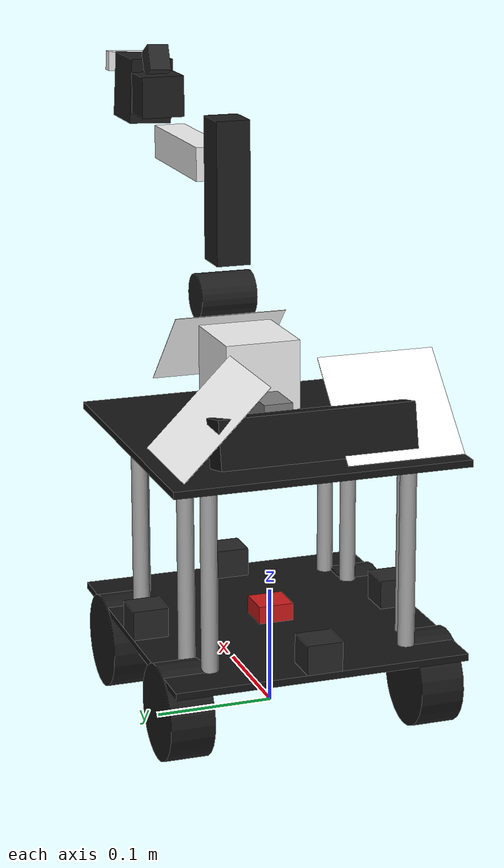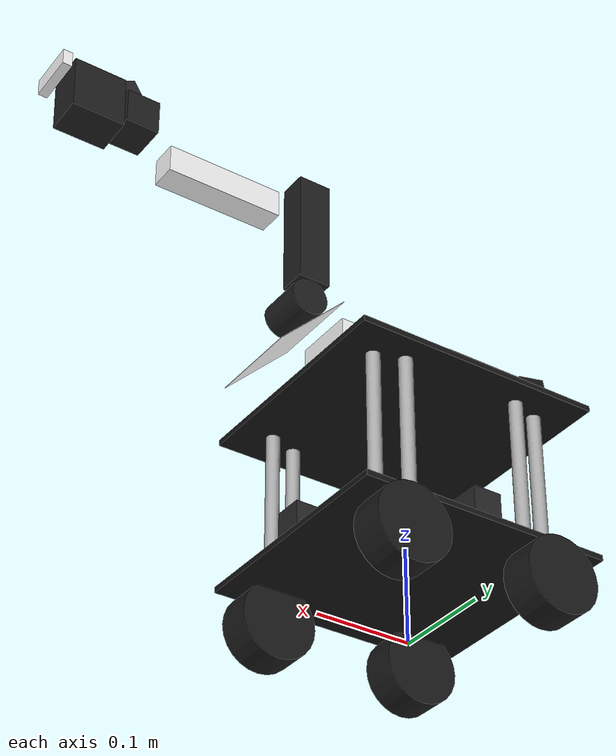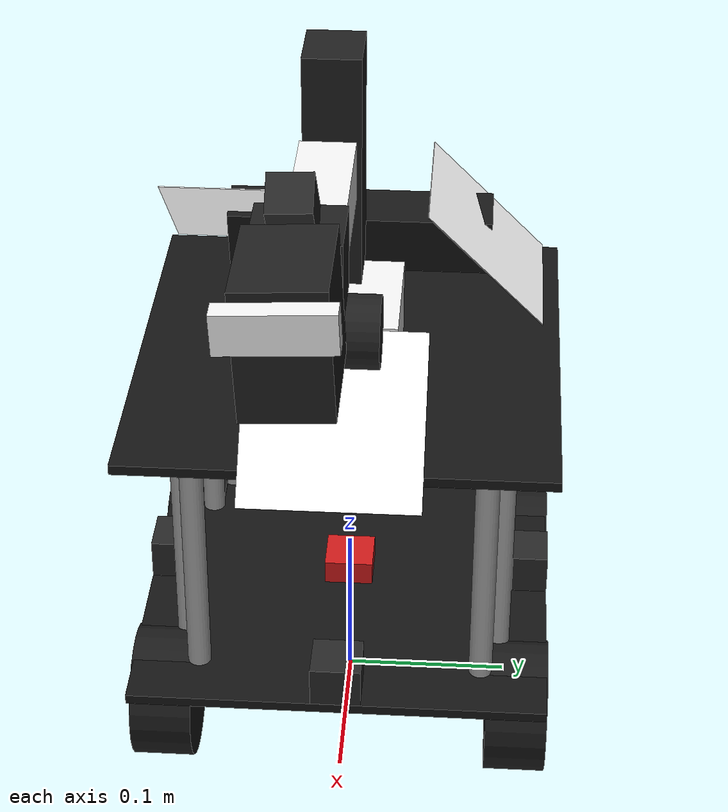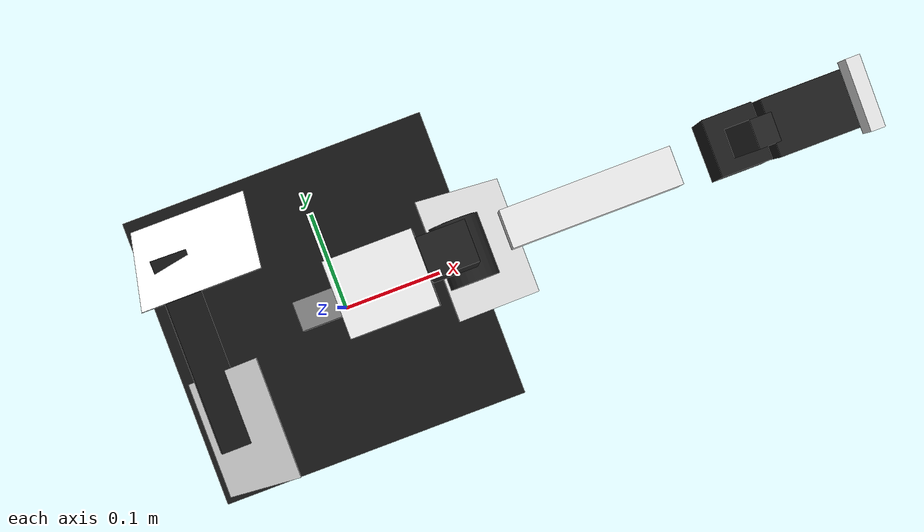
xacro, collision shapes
<?xml version="1.0"?>
<robot xmlns:xacro="http://www.ros.org/wiki/xacro" xmlns:gz="http://gazebosim.org/schema" name="mecanum_bot">

    <xacro:property name="PI" value="3.1415926535897931"/>

    <xacro:arg name="drive" default="mecanum"/>
    <xacro:arg name="lidar" default="false"/>
    <xacro:arg name="minimal_sensors" default="false"/>
    <!-- sim.launch.py vr:=true. Quest streams are 960x540 at 30 Hz. -->
    <xacro:arg name="vr_cameras" default="false"/>
    <!-- use_sim loads gz_ros2_control. use_mock is the CI GenericSystem.
         controllers_file is controllers.yaml for the gz plugin only. -->
    <xacro:arg name="use_sim" default="false"/>
    <xacro:arg name="use_mock" default="false"/>
    <xacro:arg name="controllers_file" default=""/>
    <xacro:arg name="calibration_file" default=""/>
    <xacro:arg name="base_port" default="/dev/ttyUSB0"/>
    <xacro:arg name="base_baud" default="115200"/>
    <xacro:arg name="arm_port" default="/dev/ttyACM0"/>
    <xacro:arg name="arm_baud" default="1000000"/>
    <xacro:property name="enable_extra_cameras" value="true"/>
    <xacro:property name="front_cam_width" value="640"/>
    <xacro:property name="front_cam_height" value="480"/>
    <xacro:property name="front_cam_rate" value="30"/>
    <xacro:property name="vr_cam_width" value="960"/>
    <xacro:property name="vr_cam_height" value="540"/>
    <xacro:property name="vr_cam_rate" value="30"/>
    <xacro:if value="$(arg minimal_sensors)">
        <xacro:property name="enable_extra_cameras" value="false"/>
        <xacro:property name="front_cam_width" value="160"/>
        <xacro:property name="front_cam_height" value="120"/>
        <xacro:property name="front_cam_rate" value="5"/>
    </xacro:if>
    <!-- Later than minimal_sensors, so vr:=true raises the front camera
         without turning the depth camera or the four fisheyes back on. -->
    <xacro:if value="$(arg vr_cameras)">
        <xacro:property name="front_cam_width" value="${vr_cam_width}"/>
        <xacro:property name="front_cam_height" value="${vr_cam_height}"/>
        <xacro:property name="front_cam_rate" value="${vr_cam_rate}"/>
    </xacro:if>

    <xacro:property name="chassis_length"    value="0.265"/>  <!-- 265 mm front-to-rear -->
    <xacro:property name="chassis_width"     value="0.250"/>  <!-- 250 mm left-to-right -->
    <xacro:property name="plate_thickness"   value="0.006"/>  <!-- 6 mm aluminium plate -->
    <xacro:property name="standoff_height"   value="0.160"/>  <!-- 160 mm between plate faces -->
    <xacro:property name="ground_clearance"  value="0.070"/>  <!-- ground → bottom of bottom plate -->

    <!-- Bottom plate (base_link) centre above base_footprint -->
    <xacro:property name="base_link_z_offset" value="${ground_clearance + plate_thickness / 2.0}"/>
    <!-- Top plate centre above base_link centre -->
    <xacro:property name="top_plate_dz"       value="${plate_thickness + standoff_height}"/>
    <!-- Top surface of top plate above base_link centre (used for mounting) -->
    <xacro:property name="top_surface_dz"     value="${top_plate_dz + plate_thickness / 2.0}"/>

    <!-- ================================================================
         Wheels
         ================================================================ -->
    <xacro:property name="wheel_radius"       value="0.04"/>
    <xacro:property name="wheel_width"        value="0.037"/>
    <xacro:property name="wheel_separation_x" value="0.165"/>
    <xacro:property name="wheel_separation_y" value="0.215"/>
    <!-- Negative: wheels hang below bottom plate -->
    <xacro:property name="wheel_z_offset"     value="${wheel_radius - base_link_z_offset}"/>
    <xacro:property name="wheel_x_offset"     value="${wheel_separation_x / 2.0}"/>
    <xacro:property name="wheel_y_offset"     value="${wheel_separation_y / 2.0}"/>
    <!-- Hub and roller sizes baked into meshes/base/mecanum_wheel_cs_*.stl
         by scripts/generate_base_meshes.py. Collision still uses wheel_radius
         and wheel_width. -->
    <xacro:property name="hub_radius_scale"   value="0.80"/>
    <xacro:property name="roller_radius"      value="0.006"/>
    <xacro:property name="roller_length"      value="0.030"/>
    <xacro:property name="wheel_effort"       value="100"/>
    <xacro:property name="wheel_velocity"     value="100"/>

    <xacro:property name="base_mass"       value="1.5"/>
    <xacro:property name="top_plate_mass"  value="1.0"/>
    <xacro:property name="wheel_mass"      value="0.2"/>
    <xacro:property name="camera_mass"     value="0.05"/>
    <xacro:property name="astra_mass"      value="0.300"/>

    <!-- ================================================================
         OV9732 camera body size (camera + case)
         ================================================================ -->
    <xacro:property name="camera_size_x"   value="0.030"/>  <!-- depth into face -->
    <xacro:property name="camera_size_y"   value="0.030"/>  <!-- width -->
    <xacro:property name="camera_size_z"   value="0.025"/>  <!-- height -->

    <!-- ================================================================
         base_footprint — ground-level reference frame
         ================================================================ -->
    <link name="base_footprint"/>

    <link name="base_link">
        <!-- Simplified procedural plate, not CAD. meshes/base/README.md. -->
        <visual>
            <origin xyz="0 0 0" rpy="0 0 0"/>
            <geometry>
                <mesh filename="package://omnibot_description/meshes/base/chassis_plate.stl"/>
            </geometry>
            <material name="chassis_black">
                <color rgba="0.08 0.08 0.08 1"/>
            </material>
        </visual>
        <collision>
            <origin xyz="0 0 0" rpy="0 0 0"/>
            <geometry>
                <box size="${chassis_length} ${chassis_width} ${plate_thickness}"/>
            </geometry>
        </collision>
        <inertial>
            <mass value="${base_mass}"/>
            <origin xyz="0 0 0" rpy="0 0 0"/>
            <inertia
                ixx="${base_mass / 12.0 * (chassis_width*chassis_width   + plate_thickness*plate_thickness)}"
                ixy="0" ixz="0"
                iyy="${base_mass / 12.0 * (chassis_length*chassis_length + plate_thickness*plate_thickness)}"
                iyz="0"
                izz="${base_mass / 12.0 * (chassis_length*chassis_length + chassis_width*chassis_width)}"/>
        </inertial>
    </link>

    <gazebo reference="base_link">
        <material>Gazebo/DarkGrey</material>
    </gazebo>

    <joint name="base_footprint_joint" type="fixed">
        <parent link="base_footprint"/>
        <child link="base_link"/>
        <origin xyz="0 0 ${base_link_z_offset}" rpy="0 0 0"/>
    </joint>

    <xacro:macro name="standoff" params="prefix x_pos y_pos">
        <link name="${prefix}_standoff_link">
            <visual>
                <origin xyz="0 0 0" rpy="0 0 0"/>
                <geometry>
                    <cylinder radius="0.007" length="${standoff_height}"/>
                </geometry>
                <material name="standoff_silver">
                    <color rgba="0.65 0.65 0.65 1"/>
                </material>
            </visual>
            <collision>
                <origin xyz="0 0 0" rpy="0 0 0"/>
                <geometry>
                    <cylinder radius="0.007" length="${standoff_height}"/>
                </geometry>
            </collision>
            <!-- 0.04 kg and 0.0001 kg·m^2 are round estimates, not a datasheet. -->
            <inertial>
                <mass value="0.04"/>
                <origin xyz="0 0 0" rpy="0 0 0"/>
                <inertia ixx="0.0001" ixy="0" ixz="0" iyy="0.0001" iyz="0" izz="0.0001"/>
            </inertial>
        </link>
        <joint name="${prefix}_standoff_joint" type="fixed">
            <parent link="base_link"/>
            <child link="${prefix}_standoff_link"/>
            <!-- standoff spans from top face of bottom plate to bottom face of top plate -->
            <origin xyz="${x_pos} ${y_pos} ${plate_thickness / 2.0 + standoff_height / 2.0}" rpy="0 0 0"/>
        </joint>
    </xacro:macro>

    <!-- 8 standoffs: two pairs near each corner -->
    <xacro:standoff prefix="so_fl_a" x_pos=" 0.095" y_pos=" 0.085"/>
    <xacro:standoff prefix="so_fl_b" x_pos=" 0.065" y_pos=" 0.095"/>
    <xacro:standoff prefix="so_fr_a" x_pos=" 0.095" y_pos="-0.085"/>
    <xacro:standoff prefix="so_fr_b" x_pos=" 0.065" y_pos="-0.095"/>
    <xacro:standoff prefix="so_rl_a" x_pos="-0.095" y_pos=" 0.085"/>
    <xacro:standoff prefix="so_rl_b" x_pos="-0.065" y_pos=" 0.095"/>
    <xacro:standoff prefix="so_rr_a" x_pos="-0.095" y_pos="-0.085"/>
    <xacro:standoff prefix="so_rr_b" x_pos="-0.065" y_pos="-0.095"/>

    <link name="top_plate_link">
        <!-- Same simplified plate mesh as base_link. Not CAD. -->
        <visual>
            <origin xyz="0 0 0" rpy="0 0 0"/>
            <geometry>
                <mesh filename="package://omnibot_description/meshes/base/chassis_plate.stl"/>
            </geometry>
            <material name="chassis_black"/>
        </visual>
        <collision>
            <origin xyz="0 0 0" rpy="0 0 0"/>
            <geometry>
                <box size="${chassis_length} ${chassis_width} ${plate_thickness}"/>
            </geometry>
        </collision>
        <inertial>
            <mass value="${top_plate_mass}"/>
            <origin xyz="0 0 0" rpy="0 0 0"/>
            <inertia
                ixx="${top_plate_mass / 12.0 * (chassis_width*chassis_width   + plate_thickness*plate_thickness)}"
                ixy="0" ixz="0"
                iyy="${top_plate_mass / 12.0 * (chassis_length*chassis_length + plate_thickness*plate_thickness)}"
                iyz="0"
                izz="${top_plate_mass / 12.0 * (chassis_length*chassis_length + chassis_width*chassis_width)}"/>
        </inertial>
    </link>

    <gazebo reference="top_plate_link">
        <material>Gazebo/DarkGrey</material>
    </gazebo>

    <joint name="top_plate_joint" type="fixed">
        <parent link="base_link"/>
        <child link="top_plate_link"/>
        <!-- top plate centre is one plate_thickness + standoff_height above bottom plate centre -->
        <origin xyz="0 0 ${top_plate_dz}" rpy="0 0 0"/>
    </joint>

    <xacro:macro name="base_camera" params="prefix x_pos y_pos yaw_angle with_sensor:=true cam_width:=640 cam_height:=480 cam_rate:=30">
        <link name="${prefix}_camera_link">
            <visual>
                <origin xyz="0 0 0" rpy="0 0 0"/>
                <geometry>
                    <box size="${camera_size_x} ${camera_size_y} ${camera_size_z}"/>
                </geometry>
                <material name="dark_grey">
                    <color rgba="0.15 0.15 0.15 1"/>
                </material>
            </visual>
            <collision>
                <origin xyz="0 0 0" rpy="0 0 0"/>
                <geometry>
                    <box size="${camera_size_x} ${camera_size_y} ${camera_size_z}"/>
                </geometry>
            </collision>
            <inertial>
                <mass value="${camera_mass}"/>
                <origin xyz="0 0 0" rpy="0 0 0"/>
                <inertia
                    ixx="${camera_mass / 12.0 * (camera_size_y*camera_size_y + camera_size_z*camera_size_z)}"
                    ixy="0" ixz="0"
                    iyy="${camera_mass / 12.0 * (camera_size_x*camera_size_x + camera_size_z*camera_size_z)}"
                    iyz="0"
                    izz="${camera_mass / 12.0 * (camera_size_x*camera_size_x + camera_size_y*camera_size_y)}"/>
            </inertial>
        </link>

        <!-- Cameras sit on top surface of base_link, near each edge, facing outward. -->
        <joint name="${prefix}_camera_joint" type="fixed">
            <parent link="base_link"/>
            <child link="${prefix}_camera_link"/>
            <origin xyz="${x_pos} ${y_pos} ${plate_thickness / 2.0 + camera_size_z / 2.0}"
                    rpy="0 0 ${yaw_angle}"/>
        </joint>

        <xacro:if value="${with_sensor}">
        <gazebo reference="${prefix}_camera_link">
            <sensor name="${prefix}_camera_sensor" type="camera">
                <always_on>1</always_on>
                <update_rate>${cam_rate}</update_rate>
                <visualize>false</visualize>
                <topic>/camera/${prefix}/image_raw</topic>
                <gz_frame_id>${prefix}_camera_link</gz_frame_id>
                <camera>
                    <horizontal_fov>1.745</horizontal_fov>
                    <image>
                        <width>${cam_width}</width>
                        <height>${cam_height}</height>
                        <format>R8G8B8</format>
                    </image>
                    <clip>
                        <near>0.05</near>
                        <far>10</far>
                    </clip>
                </camera>
            </sensor>
        </gazebo>
        </xacro:if>
    </xacro:macro>

    <!-- Cameras on top of the base plate, near each edge, facing outward -->
    <xacro:base_camera prefix="front"
        x_pos="${chassis_length / 2.0 - camera_size_x / 2.0}"
        y_pos="0"
        yaw_angle="0"
        with_sensor="true"
        cam_width="${front_cam_width}"
        cam_height="${front_cam_height}"
        cam_rate="${front_cam_rate}"/>

    <xacro:base_camera prefix="rear"
        x_pos="${-(chassis_length / 2.0 - camera_size_x / 2.0)}"
        y_pos="0"
        yaw_angle="${PI}"
        with_sensor="${enable_extra_cameras}"/>

    <xacro:base_camera prefix="left"
        x_pos="0"
        y_pos="${chassis_width / 2.0 - camera_size_x / 2.0}"
        yaw_angle="${PI/2}"
        with_sensor="${enable_extra_cameras}"/>

    <xacro:base_camera prefix="right"
        x_pos="0"
        y_pos="${-(chassis_width / 2.0 - camera_size_x / 2.0)}"
        yaw_angle="${-PI/2}"
        with_sensor="${enable_extra_cameras}"/>

    <link name="depth_camera_link">
        <visual>
            <origin xyz="0 0 0" rpy="0 0 0"/>
            <geometry>
                <!-- 165 mm wide, 30 mm deep, 40 mm tall -->
                <box size="0.030 0.165 0.040"/>
            </geometry>
            <material name="astra_black">
                <color rgba="0.08 0.08 0.08 1"/>
            </material>
        </visual>
        <collision>
            <origin xyz="0 0 0" rpy="0 0 0"/>
            <geometry>
                <box size="0.030 0.165 0.040"/>
            </geometry>
        </collision>
        <inertial>
            <mass value="${astra_mass}"/>
            <origin xyz="0 0 0" rpy="0 0 0"/>
            <inertia
                ixx="${astra_mass / 12.0 * (0.165*0.165 + 0.040*0.040)}"
                ixy="0" ixz="0"
                iyy="${astra_mass / 12.0 * (0.030*0.030 + 0.040*0.040)}"
                iyz="0"
                izz="${astra_mass / 12.0 * (0.030*0.030 + 0.165*0.165)}"/>
        </inertial>
    </link>

    <!-- Rear-centre of top plate, 20 mm above surface, 12° down-tilt, facing rearward (yaw=PI) -->
    <joint name="depth_camera_joint" type="fixed">
        <parent link="top_plate_link"/>
        <child link="depth_camera_link"/>
        <origin xyz="${-(chassis_length / 2.0 - 0.030)} 0 ${plate_thickness / 2.0 + 0.025}"
                rpy="0 -0.2094 ${PI}"/>
    </joint>

    <!-- Optical frame: Z forward, X right, Y down (ROS convention) -->
    <link name="depth_camera_optical_frame"/>
    <joint name="depth_camera_optical_joint" type="fixed">
        <parent link="depth_camera_link"/>
        <child link="depth_camera_optical_frame"/>
        <origin xyz="0 0 0" rpy="${-PI/2} 0 ${-PI/2}"/>
    </joint>

    <xacro:if value="${enable_extra_cameras}">
    <gazebo reference="depth_camera_link">
        <sensor name="astra_pro_sensor" type="rgbd_camera">
            <always_on>1</always_on>
            <update_rate>30</update_rate>
            <visualize>false</visualize>
            <topic>/camera/depth</topic>
            <gz_frame_id>depth_camera_optical_frame</gz_frame_id>
            <camera>
                <horizontal_fov>1.0472</horizontal_fov>
                <image>
                    <width>640</width>
                    <height>480</height>
                    <format>R_FLOAT32</format>
                </image>
                <clip>
                    <near>0.6</near>
                    <far>8.0</far>
                </clip>
                <noise>
                    <type>gaussian</type>
                    <mean>0.0</mean>
                    <stddev>0.005</stddev>
                </noise>
            </camera>
        </sensor>
    </gazebo>
    </xacro:if>

    <link name="camera_link">
        <visual>
            <origin xyz="0 0 0" rpy="0 0 0"/>
            <geometry>
                <box size="0.040 0.025 0.025"/>
            </geometry>
            <material name="grey">
                <color rgba="0.5 0.5 0.5 1"/>
            </material>
        </visual>
        <collision>
            <origin xyz="0 0 0" rpy="0 0 0"/>
            <geometry><box size="0.040 0.025 0.025"/></geometry>
        </collision>
        <inertial>
            <mass value="${camera_mass}"/>
            <origin xyz="0 0 0" rpy="0 0 0"/>
            <inertia ixx="1e-5" ixy="0" ixz="0" iyy="1e-5" iyz="0" izz="1e-5"/>
        </inertial>
    </link>

    <joint name="camera_joint" type="fixed">
        <parent link="top_plate_link"/>
        <child link="camera_link"/>
        <origin xyz="0 0 ${plate_thickness / 2.0 + 0.015}" rpy="0 0 0"/>
    </joint>

    <xacro:if value="${enable_extra_cameras}">
    <gazebo reference="camera_link">
        <sensor name="camera_sensor" type="camera">
            <always_on>1</always_on>
            <update_rate>30</update_rate>
            <visualize>false</visualize>
            <topic>/camera/image_raw</topic>
            <gz_frame_id>camera_link</gz_frame_id>
            <camera>
                <horizontal_fov>1.047</horizontal_fov>
                <image>
                    <width>640</width>
                    <height>480</height>
                    <format>R8G8B8</format>
                </image>
                <clip>
                    <near>0.05</near>
                    <far>50</far>
                </clip>
            </camera>
        </sensor>
    </gazebo>
    </xacro:if>

    <link name="imu_link">
        <visual>
            <origin xyz="0 0 0" rpy="0 0 0"/>
            <geometry><box size="0.03 0.03 0.015"/></geometry>
            <material name="red"><color rgba="0.8 0.1 0.1 1"/></material>
        </visual>
        <collision>
            <origin xyz="0 0 0" rpy="0 0 0"/>
            <geometry><box size="0.03 0.03 0.015"/></geometry>
        </collision>
        <inertial>
            <mass value="0.01"/>
            <origin xyz="0 0 0" rpy="0 0 0"/>
            <inertia ixx="1e-6" ixy="0" ixz="0" iyy="1e-6" iyz="0" izz="1e-6"/>
        </inertial>
    </link>

    <joint name="imu_joint" type="fixed">
        <parent link="base_link"/>
        <child link="imu_link"/>
        <!-- Centred on bottom plate, slightly above surface -->
        <origin xyz="0 0 ${plate_thickness / 2.0 + 0.008}" rpy="0 0 0"/>
    </joint>

    <xacro:macro name="wheel" params="prefix x_reflect y_reflect mesh">
        <link name="${prefix}_wheel_link">

            <visual>
                <origin xyz="0 0 0" rpy="0 0 0"/>
                <geometry>
                    <mesh filename="package://omnibot_description/meshes/base/${mesh}"/>
                </geometry>
                <material name="wheel_black">
                    <color rgba="0.10 0.10 0.10 1"/>
                </material>
            </visual>

            <!-- Collision: simple cylinder for physics (covers full wheel radius) -->
            <collision>
                <origin xyz="0 0 0" rpy="${PI/2} 0 0"/>
                <geometry>
                    <cylinder radius="${wheel_radius}" length="${wheel_width}"/>
                </geometry>
            </collision>

            <inertial>
                <mass value="${wheel_mass}"/>
                <origin xyz="0 0 0" rpy="0 0 0"/>
                <inertia
                    ixx="${wheel_mass/12.0*(3*wheel_radius*wheel_radius + wheel_width*wheel_width)}"
                    ixy="0" ixz="0"
                    iyy="${wheel_mass/2.0*(wheel_radius*wheel_radius)}"
                    iyz="0"
                    izz="${wheel_mass/12.0*(3*wheel_radius*wheel_radius + wheel_width*wheel_width)}"/>
            </inertial>
        </link>

        <gazebo reference="${prefix}_wheel_link">
            <material>Gazebo/DarkGrey</material>
            <mu1>0.8</mu1>
            <mu2>0.8</mu2>
        </gazebo>

        <!-- No yaw in joint — wheels always face straight forward/rear.
             The diagonal roller force is handled by the MecanumDrive plugin. -->
        <joint name="${prefix}_wheel_joint" type="continuous">
            <parent link="base_link"/>
            <child link="${prefix}_wheel_link"/>
            <origin xyz="${x_reflect * wheel_x_offset} ${y_reflect * wheel_y_offset} ${wheel_z_offset}"
                    rpy="0 0 0"/>
            <axis xyz="0 1 0"/>
            <limit effort="${wheel_effort}" velocity="${wheel_velocity}"/>
        </joint>
    </xacro:macro>

    <!-- FL+RR share "\" (cs_pos). FR+RL share "/" (cs_neg). -->
    <xacro:wheel prefix="front_left"  x_reflect=" 1" y_reflect=" 1" mesh="mecanum_wheel_cs_pos.stl"/>
    <xacro:wheel prefix="front_right" x_reflect=" 1" y_reflect="-1" mesh="mecanum_wheel_cs_neg.stl"/>
    <xacro:wheel prefix="rear_left"   x_reflect="-1" y_reflect=" 1" mesh="mecanum_wheel_cs_neg.stl"/>
    <xacro:wheel prefix="rear_right"  x_reflect="-1" y_reflect="-1" mesh="mecanum_wheel_cs_pos.stl"/>

    <material name="arm_white"><color rgba="0.95 0.95 0.95 1.0"/></material>
    <material name="arm_servo"><color rgba="0.12 0.12 0.12 1.0"/></material>

    <xacro:property name="sts3215_effort" value="1.9123"/>
    <xacro:property name="sts3215_velocity" value="5.4542"/>
    <xacro:arg name="gz_arm_effort" default="${sts3215_effort}"/>

    <xacro:property name="arm_body_x" value="0.075"/>
    <xacro:property name="arm_body_y" value="0.065"/>
    <xacro:property name="arm_body_z" value="0.055"/>
    <xacro:property name="waveshare_origin_x" value="-0.031"/>
    <xacro:property name="waveshare_origin_z" value="0.068"/>
    <xacro:property name="waveshare_size_x" value="0.080"/>
    <xacro:property name="waveshare_size_y" value="0.060"/>
    <xacro:property name="waveshare_size_z" value="0.006"/>

    <xacro:macro name="so101_visual" params="stl xyz rpy material">
        <visual>
            <origin xyz="${xyz}" rpy="${rpy}"/>
            <geometry>
                <mesh filename="package://omnibot_description/meshes/so101/${stl}"/>
            </geometry>
            <material name="${material}"/>
        </visual>
    </xacro:macro>

    <!-- Fixed joint: top plate → arm base -->
    <joint name="arm_base_joint" type="fixed">
        <parent link="top_plate_link"/>
        <child link="arm_base_link"/>
        <origin xyz="0.055 0 ${plate_thickness / 2.0}" rpy="0 0 0"/>
    </joint>

    <!-- ARM BASE — pedestal body + bottom servo -->
    <link name="arm_base_link">
        <xacro:so101_visual stl="base_motor_holder_so101_v1.stl" xyz="-0.00636471 -9.94414e-05 -0.0024" rpy="1.5708 -1.67685e-15 1.5708" material="arm_white"/>
        <xacro:so101_visual stl="base_so101_v2.stl" xyz="-0.00636471 -8.97657e-09 -0.0024" rpy="1.5708 -2.78073e-29 1.5708" material="arm_white"/>
        <xacro:so101_visual stl="sts3215_03a_v1.stl" xyz="0.0263353 -8.97657e-09 0.0437" rpy="-8.21148e-16 7.84513e-18 1.249e-15" material="arm_servo"/>
        <xacro:so101_visual stl="waveshare_mounting_plate_so101_v2.stl" xyz="-0.0309827 -0.000199441 0.0474" rpy="1.5708 -1.35493e-14 1.5708" material="arm_white"/>
        <collision>
            <origin xyz="0 0 0.035" rpy="0 0 0"/>
            <geometry><box size="0.075 0.065 0.070"/></geometry>
        </collision>
        <inertial>
            <origin xyz="0.0137179 -5.19711e-05 0.0334843" rpy="0 0 0"/>
            <mass value="0.147"/>
            <inertia ixx="0.000114686" ixy="-4.59787e-07" ixz="4.97151e-06"
                     iyy="0.000136117" iyz="9.75275e-08" izz="0.000130364"/>
        </inertial>
    </link>

    <!-- SHOULDER — pan servo + motor holder + rotation pitch bracket -->
    <link name="arm_shoulder_link">
        <xacro:so101_visual stl="sts3215_03a_v1.stl" xyz="-0.0303992 0.000422241 -0.0417" rpy="1.5708 1.5708 0" material="arm_servo"/>
        <xacro:so101_visual stl="motor_holder_so101_base_v1.stl" xyz="-0.0675992 -0.000177759 0.0158499" rpy="1.5708 -1.5708 0" material="arm_white"/>
        <xacro:so101_visual stl="rotation_pitch_so101_v1.stl" xyz="0.0122008 2.22413e-05 0.0464" rpy="-1.5708 2.35221e-33 0" material="arm_white"/>
        <collision>
            <origin xyz="-0.031 0 -0.025" rpy="${PI/2} 0 0"/>
            <geometry><cylinder radius="0.020" length="0.050"/></geometry>
        </collision>
        <inertial>
            <origin xyz="-0.0307604 -1.66727e-05 -0.0252713" rpy="0 0 0"/>
            <mass value="0.100006"/>
            <inertia ixx="8.3759e-05" ixy="7.55525e-08" ixz="-1.16342e-06"
                     iyy="8.10403e-05" iyz="1.54663e-07" izz="2.39783e-05"/>
        </inertial>
    </link>

    <!-- shoulder_pan — exact origin from so101_new_calib.urdf -->
    <joint name="arm_shoulder_pan" type="revolute">
        <origin xyz="0.0388353 -8.97657e-09 0.0624" rpy="3.14159 4.18253e-17 -3.14159"/>
        <parent link="arm_base_link"/>
        <child link="arm_shoulder_link"/>
        <axis xyz="0 0 1"/>
        <limit effort="$(arg gz_arm_effort)" velocity="${sts3215_velocity}" lower="-1.91986" upper="1.91986"/>
        <dynamics damping="4.0" friction="0.5"/>
    </joint>

    <!-- UPPER ARM — beam + elbow servo -->
    <link name="arm_upper_arm_link">
        <xacro:so101_visual stl="sts3215_03a_v1.stl" xyz="-0.11257 -0.0155 0.0187" rpy="-3.14159 -5.27356e-16 -1.5708" material="arm_servo"/>
        <xacro:so101_visual stl="upper_arm_so101_v1.stl" xyz="-0.065085 0.012 0.0182" rpy="3.14159 -0 -1.30911e-30" material="arm_white"/>
        <collision>
            <origin xyz="-0.065 0.012 0.018" rpy="0 0 0"/>
            <geometry><box size="0.125 0.035 0.030"/></geometry>
        </collision>
        <inertial>
            <origin xyz="-0.0898471 -0.00838224 0.0184089" rpy="0 0 0"/>
            <mass value="0.103"/>
            <inertia ixx="4.08002e-05" ixy="-1.97819e-05" ixz="-4.03016e-08"
                     iyy="0.000147318" iyz="8.97326e-09" izz="0.000142487"/>
        </inertial>
    </link>

    <!-- shoulder_lift — exact origin from so101_new_calib.urdf -->
    <joint name="arm_shoulder_lift" type="revolute">
        <origin xyz="-0.0303992 -0.0182778 -0.0542" rpy="-1.5708 -1.5708 0"/>
        <parent link="arm_shoulder_link"/>
        <child link="arm_upper_arm_link"/>
        <axis xyz="0 0 1"/>
        <limit effort="$(arg gz_arm_effort)" velocity="${sts3215_velocity}" lower="-1.74533" upper="1.74533"/>
        <dynamics damping="4.0" friction="0.5"/>
    </joint>

    <!-- LOWER ARM — forearm beam + wrist servo -->
    <link name="arm_lower_arm_link">
        <xacro:so101_visual stl="under_arm_so101_v1.stl" xyz="-0.0648499 -0.032 0.0182" rpy="3.14159 -0 6.67202e-31" material="arm_white"/>
        <xacro:so101_visual stl="motor_holder_so101_wrist_v1.stl" xyz="-0.0648499 -0.032 0.018" rpy="-3.14159 -2.55351e-15 -1.83387e-30" material="arm_white"/>
        <xacro:so101_visual stl="sts3215_03a_v1.stl" xyz="-0.1224 0.0052 0.0187" rpy="-3.14159 -7.88861e-31 -3.14159" material="arm_servo"/>
        <collision>
            <origin xyz="-0.065 -0.032 0.018" rpy="0 0 0"/>
            <geometry><box size="0.125 0.030 0.028"/></geometry>
        </collision>
        <inertial>
            <origin xyz="-0.0980701 0.00324376 0.0182831" rpy="0 0 0"/>
            <mass value="0.104"/>
            <inertia ixx="2.87438e-05" ixy="7.41152e-06" ixz="1.26409e-06"
                     iyy="0.000159844" iyz="-4.90188e-08" izz="0.00014529"/>
        </inertial>
    </link>

    <!-- elbow_flex — exact origin from so101_new_calib.urdf -->
    <joint name="arm_elbow_flex" type="revolute">
        <origin xyz="-0.11257 -0.028 1.73763e-16" rpy="-3.63608e-16 8.74301e-16 1.5708"/>
        <parent link="arm_upper_arm_link"/>
        <child link="arm_lower_arm_link"/>
        <axis xyz="0 0 1"/>
        <limit effort="$(arg gz_arm_effort)" velocity="${sts3215_velocity}" lower="-1.69" upper="1.69"/>
        <dynamics damping="4.0" friction="0.5"/>
    </joint>

    <!-- WRIST — roll/pitch bracket + servo (no horn) -->
    <link name="arm_wrist_link">
        <xacro:so101_visual stl="sts3215_03a_no_horn_v1.stl" xyz="8.32667e-17 -0.0424 0.0306" rpy="1.5708 1.5708 0" material="arm_servo"/>
        <xacro:so101_visual stl="wrist_roll_pitch_so101_v2.stl" xyz="0 -0.028 0.0181" rpy="-1.5708 -1.5708 0" material="arm_white"/>
        <collision>
            <origin xyz="0 -0.028 0.018" rpy="0 0 0"/>
            <geometry><box size="0.038 0.035 0.040"/></geometry>
        </collision>
        <inertial>
            <origin xyz="-0.000103312 -0.0386143 0.0281156" rpy="0 0 0"/>
            <mass value="0.079"/>
            <inertia ixx="3.68263e-05" ixy="1.7893e-08" ixz="-5.28128e-08"
                     iyy="2.5391e-05" iyz="3.6412e-06" izz="2.1e-05"/>
        </inertial>
    </link>

    <!-- wrist_flex — exact origin from so101_new_calib.urdf -->
    <joint name="arm_wrist_flex" type="revolute">
        <origin xyz="-0.1349 0.0052 3.62355e-17" rpy="4.02456e-15 8.67362e-16 -1.5708"/>
        <parent link="arm_lower_arm_link"/>
        <child link="arm_wrist_link"/>
        <axis xyz="0 0 1"/>
        <limit effort="$(arg gz_arm_effort)" velocity="${sts3215_velocity}" lower="-1.65806" upper="1.65806"/>
        <dynamics damping="4.0" friction="0.5"/>
    </joint>

    <!-- GRIPPER — roll follower body + roll servo -->
    <link name="arm_gripper_link">
        <xacro:so101_visual stl="sts3215_03a_v1.stl" xyz="0.0077 0.0001 -0.0234" rpy="-1.5708 -5.19179e-17 -1.66533e-16" material="arm_servo"/>
        <xacro:so101_visual stl="wrist_roll_follower_so101_v1.stl" xyz="8.32667e-17 -0.000218214 0.000949706" rpy="-3.14159 -5.55112e-17 0" material="arm_white"/>
        <collision>
            <origin xyz="0 0 -0.015" rpy="0 0 0"/>
            <geometry><box size="0.060 0.040 0.055"/></geometry>
        </collision>
        <inertial>
            <origin xyz="0.000213627 0.000245138 -0.025187" rpy="0 0 0"/>
            <mass value="0.087"/>
            <inertia ixx="2.75087e-05" ixy="-3.35241e-07" ixz="-5.7352e-06"
                     iyy="4.33657e-05" iyz="-5.17847e-08" izz="3.45059e-05"/>
        </inertial>
    </link>

    <!-- wrist_roll — exact origin from so101_new_calib.urdf -->
    <joint name="arm_wrist_roll" type="revolute">
        <origin xyz="5.55112e-17 -0.0611 0.0181" rpy="1.5708 0.0486795 3.14159"/>
        <parent link="arm_wrist_link"/>
        <child link="arm_gripper_link"/>
        <axis xyz="0 0 1"/>
        <limit effort="$(arg gz_arm_effort)" velocity="${sts3215_velocity}" lower="-2.74385" upper="2.84121"/>
        <dynamics damping="4.0" friction="0.5"/>
    </joint>

    <!-- GRIPPER FRAME — tool-frame reference (fixed, massless) -->
    <link name="arm_gripper_frame_link">
        <inertial>
            <origin xyz="0 0 0" rpy="0 0 0"/>
            <mass value="1e-9"/>
            <inertia ixx="1e-9" ixy="0" ixz="0" iyy="1e-9" iyz="0" izz="1e-9"/>
        </inertial>
    </link>
    <joint name="arm_gripper_frame_joint" type="fixed">
        <origin xyz="-0.0079 -0.000218121 -0.0981274" rpy="0 3.14159 0"/>
        <parent link="arm_gripper_link"/>
        <child link="arm_gripper_frame_link"/>
    </joint>

    <!-- MOVING JAW -->
    <link name="arm_moving_jaw_link">
        <xacro:so101_visual stl="moving_jaw_so101_v1.stl" xyz="-5.55112e-17 -5.55112e-17 0.0189" rpy="9.53145e-17 6.93889e-18 1.24077e-24" material="arm_white"/>
        <collision>
            <origin xyz="0 -0.030 0.019" rpy="0 0 0"/>
            <geometry><box size="0.018 0.010 0.050"/></geometry>
        </collision>
        <inertial>
            <origin xyz="-0.00157495 -0.0300244 0.0192755" rpy="0 0 0"/>
            <mass value="0.012"/>
            <inertia ixx="6.61427e-06" ixy="-3.19807e-07" ixz="-5.90717e-09"
                     iyy="1.89032e-06" iyz="-1.09945e-07" izz="5.28738e-06"/>
        </inertial>
    </link>

    <!-- gripper — exact origin from so101_new_calib.urdf -->
    <joint name="arm_gripper" type="revolute">
        <origin xyz="0.0202 0.0188 -0.0234" rpy="1.5708 -5.24284e-08 -1.41553e-15"/>
        <parent link="arm_gripper_link"/>
        <child link="arm_moving_jaw_link"/>
        <axis xyz="0 0 1"/>
        <limit effort="$(arg gz_arm_effort)" velocity="${sts3215_velocity}" lower="-0.174533" upper="1.74533"/>
        <dynamics damping="4.0" friction="0.5"/>
    </joint>

    <link name="wrist_camera_link">
        <visual>
            <origin xyz="0 0 0" rpy="0 0 0"/>
            <geometry><box size="0.025 0.020 0.020"/></geometry>
            <material name="dark_grey"><color rgba="0.15 0.15 0.15 1"/></material>
        </visual>
        <collision>
            <origin xyz="0 0 0" rpy="0 0 0"/>
            <geometry><box size="0.025 0.020 0.020"/></geometry>
        </collision>
        <inertial>
            <mass value="${camera_mass}"/>
            <origin xyz="0 0 0" rpy="0 0 0"/>
            <inertia ixx="1e-6" ixy="0" ixz="0" iyy="1e-6" iyz="0" izz="1e-6"/>
        </inertial>
    </link>
    <joint name="wrist_camera_joint" type="fixed">
        <parent link="arm_gripper_link"/>
        <child link="wrist_camera_link"/>
        <origin xyz="0.030 0 0.025" rpy="0 ${PI/6} 0"/>
    </joint>

    <xacro:macro name="quest_camera_sensor" params="link_name sensor_name topic hfov clip_near clip_far">
        <gazebo reference="${link_name}">
            <sensor name="${sensor_name}" type="camera">
                <always_on>1</always_on>
                <update_rate>${vr_cam_rate}</update_rate>
                <visualize>false</visualize>
                <topic>${topic}</topic>
                <gz_frame_id>${link_name}</gz_frame_id>
                <camera>
                    <horizontal_fov>${hfov}</horizontal_fov>
                    <image>
                        <width>${vr_cam_width}</width>
                        <height>${vr_cam_height}</height>
                        <format>R8G8B8</format>
                    </image>
                    <clip>
                        <near>${clip_near}</near>
                        <far>${clip_far}</far>
                    </clip>
                </camera>
            </sensor>
        </gazebo>
    </xacro:macro>

    <xacro:if value="$(arg vr_cameras)">
        <xacro:quest_camera_sensor
            link_name="wrist_camera_link"
            sensor_name="wrist_camera_sensor"
            topic="/camera/wrist/image_raw"
            hfov="1.745"
            clip_near="0.02"
            clip_far="3.0"/>

        <link name="bev_camera_link">
            <visual>
                <origin xyz="0 0 0" rpy="0 0 0"/>
                <geometry><box size="0.02 0.02 0.02"/></geometry>
                <material name="dark_grey"><color rgba="0.15 0.15 0.15 1"/></material>
            </visual>
            <inertial>
                <mass value="0.001"/>
                <origin xyz="0 0 0" rpy="0 0 0"/>
                <inertia ixx="1e-6" ixy="0" ixz="0" iyy="1e-6" iyz="0" izz="1e-6"/>
            </inertial>
        </link>
        <joint name="bev_camera_joint" type="fixed">
            <parent link="base_link"/>
            <child link="bev_camera_link"/>
            <origin xyz="0 0 2.2" rpy="0 ${PI/2} 0"/>
        </joint>
        <xacro:quest_camera_sensor
            link_name="bev_camera_link"
            sensor_name="bev_camera_sensor"
            topic="/camera/base/bev/image_raw"
            hfov="2.094"
            clip_near="0.05"
            clip_far="8.0"/>

        <!-- Third-person view from behind and above base_link, pitched
             down so the chassis sits in frame and the apartment ahead
             is still visible. Fixed joint, so it follows the base. -->
        <link name="chase_camera_link">
            <visual>
                <origin xyz="0 0 0" rpy="0 0 0"/>
                <geometry><box size="0.03 0.02 0.02"/></geometry>
                <material name="dark_grey"><color rgba="0.15 0.15 0.15 1"/></material>
            </visual>
            <inertial>
                <mass value="0.001"/>
                <origin xyz="0 0 0" rpy="0 0 0"/>
                <inertia ixx="1e-6" ixy="0" ixz="0" iyy="1e-6" iyz="0" izz="1e-6"/>
            </inertial>
        </link>
        <joint name="chase_camera_joint" type="fixed">
            <parent link="base_link"/>
            <child link="chase_camera_link"/>
            <origin xyz="-0.85 0 0.55" rpy="0 0.45 0"/>
        </joint>
        <xacro:quest_camera_sensor
            link_name="chase_camera_link"
            sensor_name="chase_camera_sensor"
            topic="/sim/chase_cam/image_raw"
            hfov="1.2"
            clip_near="0.05"
            clip_far="20.0"/>
    </xacro:if>

    <gazebo reference="arm_base_link">
        <turnGravityOff>true</turnGravityOff>
    </gazebo>
    <gazebo reference="arm_shoulder_link">
        <turnGravityOff>true</turnGravityOff>
    </gazebo>
    <gazebo reference="arm_upper_arm_link">
        <turnGravityOff>true</turnGravityOff>
    </gazebo>
    <gazebo reference="arm_lower_arm_link">
        <turnGravityOff>true</turnGravityOff>
    </gazebo>
    <gazebo reference="arm_wrist_link">
        <turnGravityOff>true</turnGravityOff>
    </gazebo>
    <gazebo reference="arm_gripper_link">
        <turnGravityOff>true</turnGravityOff>
        <mu1>2.0</mu1>
        <mu2>2.0</mu2>
    </gazebo>
    <gazebo reference="arm_moving_jaw_link">
        <turnGravityOff>true</turnGravityOff>
        <mu1>2.0</mu1>
        <mu2>2.0</mu2>
    </gazebo>

    <!-- ================================================================
         Gazebo IMU Sensor
         ================================================================ -->
    <gazebo reference="imu_link">
        <sensor name="imu_sensor" type="imu">
            <always_on>1</always_on>
            <update_rate>100</update_rate>
            <visualize>false</visualize>
            <topic>/imu/data</topic>
            <gz_frame_id>imu_link</gz_frame_id>
            <imu>
                <angular_velocity>
                    <x><noise type="gaussian"><mean>0</mean><stddev>0.002</stddev></noise></x>
                    <y><noise type="gaussian"><mean>0</mean><stddev>0.002</stddev></noise></y>
                    <z><noise type="gaussian"><mean>0</mean><stddev>0.002</stddev></noise></z>
                </angular_velocity>
                <linear_acceleration>
                    <x><noise type="gaussian"><mean>0</mean><stddev>0.017</stddev></noise></x>
                    <y><noise type="gaussian"><mean>0</mean><stddev>0.017</stddev></noise></y>
                    <z><noise type="gaussian"><mean>0</mean><stddev>0.017</stddev></noise></z>
                </linear_acceleration>
            </imu>
        </sensor>
    </gazebo>

    <!-- ================================================================
         Gazebo Harmonic Mecanum Drive Plugin
         ================================================================ -->
    <gazebo>
        <xacro:if value="${'$(arg drive)' == 'planar'}">
        <plugin filename="gz-sim-velocity-control-system" name="gz::sim::systems::VelocityControl">
            <topic>/cmd_vel</topic>
        </plugin>
        <plugin filename="gz-sim-odometry-publisher-system" name="gz::sim::systems::OdometryPublisher">
            <odom_frame>odom</odom_frame>
            <robot_base_frame>base_footprint</robot_base_frame>
            <odom_publish_frequency>100</odom_publish_frequency>
            <odom_topic>/odom</odom_topic>
            <tf_topic>/tf</tf_topic>
            <dimensions>2</dimensions>
        </plugin>
        </xacro:if>
        <xacro:unless value="${'$(arg drive)' == 'planar'}">
        <xacro:unless value="$(arg use_sim)">
        <plugin filename="gz-sim-mecanum-drive-system" name="gz::sim::systems::MecanumDrive">
            <front_left_joint>front_left_wheel_joint</front_left_joint>
            <front_right_joint>front_right_wheel_joint</front_right_joint>
            <back_left_joint>rear_left_wheel_joint</back_left_joint>
            <back_right_joint>rear_right_wheel_joint</back_right_joint>
            <wheel_separation>${wheel_separation_y}</wheel_separation>
            <wheelbase>${wheel_separation_x}</wheelbase>
            <wheel_radius>${wheel_radius}</wheel_radius>
            <odom_publish_frequency>50</odom_publish_frequency>
            <min_linear_acceleration>-2.0</min_linear_acceleration>
            <max_linear_acceleration>2.0</max_linear_acceleration>
            <min_linear_velocity>-1.0</min_linear_velocity>
            <max_linear_velocity>1.0</max_linear_velocity>
            <topic>/cmd_vel</topic>
            <odom_topic>/odom</odom_topic>
            <tf_topic>/tf</tf_topic>
            <frame_id>odom</frame_id>
            <child_frame_id>base_footprint</child_frame_id>
        </plugin>
        </xacro:unless>
        </xacro:unless>

        <!-- use_sim publishes joint states from joint_state_broadcaster.
             These gz publishers stay for use_sim:=false (desktop gazebo). -->
        <xacro:unless value="$(arg use_sim)">
        <plugin filename="gz-sim-joint-state-publisher-system" name="gz::sim::systems::JointStatePublisher">
            <topic>/joint_states</topic>
            <joint_name>front_left_wheel_joint</joint_name>
            <joint_name>front_right_wheel_joint</joint_name>
            <joint_name>rear_left_wheel_joint</joint_name>
            <joint_name>rear_right_wheel_joint</joint_name>
        </plugin>

        <!-- Arm joint states for use_sim:=false. sim.launch.py (use_sim)
             republishes /joint_states onto /arm/sim/joint_states. -->
        <plugin filename="gz-sim-joint-state-publisher-system" name="gz::sim::systems::JointStatePublisher">
            <topic>/arm/sim/joint_states</topic>
            <update_rate>50</update_rate>
            <joint_name>arm_shoulder_pan</joint_name>
            <joint_name>arm_shoulder_lift</joint_name>
            <joint_name>arm_elbow_flex</joint_name>
            <joint_name>arm_wrist_flex</joint_name>
            <joint_name>arm_wrist_roll</joint_name>
            <joint_name>arm_gripper</joint_name>
        </plugin>
        </xacro:unless>

        <!-- position_proportional_gain 0.15 at the 50 Hz manager makes a
             0.2 rad position error about 1.5 rad/s, the old cmd_max. -->
        <xacro:if value="$(arg use_sim)">
        <xacro:unless value="$(arg use_mock)">
        <plugin filename="gz_ros2_control-system" name="gz_ros2_control::GazeboSimROS2ControlPlugin">
            <parameters>$(arg controllers_file)</parameters>
            <hold_joints>true</hold_joints>
            <position_proportional_gain>0.15</position_proportional_gain>
            <!-- Later than VelocityControl (priority 0) so a wheel brake can
                 clear a latched body twist in the same PreUpdate. -->
            <gz:system_priority>100</gz:system_priority>
        </plugin>
        </xacro:unless>
        </xacro:if>

        <!-- NOTE: gz-sim-sensors-system and gz-sim-imu-system are world-level
             plugins loaded in the world SDF — do NOT duplicate here. -->
    </gazebo>

    <!-- 2D lidar. Off unless lidar:=true (sim.launch.py). -->
    <xacro:if value="$(arg lidar)">
        <link name="lidar_link">
            <visual>
                <origin xyz="0 0 0" rpy="0 0 0"/>
                <geometry><cylinder radius="0.035" length="0.04"/></geometry>
                <material name="lidar_black"><color rgba="0.05 0.05 0.05 1"/></material>
            </visual>
            <collision>
                <origin xyz="0 0 0" rpy="0 0 0"/>
                <geometry><cylinder radius="0.035" length="0.04"/></geometry>
            </collision>
            <inertial>
                <mass value="0.1"/>
                <origin xyz="0 0 0" rpy="0 0 0"/>
                <inertia ixx="4e-5" ixy="0" ixz="0" iyy="4e-5" iyz="0" izz="6e-5"/>
            </inertial>
        </link>
        <joint name="lidar_joint" type="fixed">
            <parent link="top_plate_link"/>
            <child link="lidar_link"/>
            <origin xyz="${chassis_length / 2.0 - 0.03} 0 ${plate_thickness / 2.0 + 0.08}" rpy="0 0 0"/>
        </joint>
        <gazebo reference="lidar_link">
            <sensor name="lidar_2d" type="gpu_lidar">
                <always_on>1</always_on>
                <update_rate>10</update_rate>
                <visualize>false</visualize>
                <topic>/scan</topic>
                <gz_frame_id>lidar_link</gz_frame_id>
                <ray>
                    <scan>
                        <horizontal>
                            <samples>180</samples>
                            <resolution>1</resolution>
                            <min_angle>-3.14159</min_angle>
                            <max_angle>3.14159</max_angle>
                        </horizontal>
                        <vertical>
                            <samples>1</samples>
                            <resolution>1</resolution>
                            <min_angle>0</min_angle>
                            <max_angle>0</max_angle>
                        </vertical>
                    </scan>
                    <range>
                        <min>0.15</min>
                        <max>12.0</max>
                        <resolution>0.01</resolution>
                    </range>
                </ray>
            </sensor>
        </gazebo>
    </xacro:if>

  <xacro:include filename="omnibot.ros2_control.xacro"/>
  <xacro:include filename="apriltags.urdf.xacro"/>

</robot>

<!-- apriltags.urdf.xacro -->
<robot xmlns:xacro="http://www.ros.org/wiki/xacro" name="omnibot_apriltags">
  <!-- Nominal tag36h11 planes for the chase cam. CAD poses, not measured.
       docs/apriltags.md. No cameras and no sensors in this file. -->
  <link name="apriltag_front_link">
    <visual>
      <origin xyz="0 0 0" rpy="0 0 0"/>
      <geometry>
        <mesh filename="package://omnibot_description/meshes/apriltags/tag36h11_id0.obj"/>
      </geometry>
      <material name="apriltag_front_matte">
        <color rgba="1 1 1 1"/>
      </material>
    </visual>
    <collision>
      <origin xyz="0 0 0.000250" rpy="0 0 0"/>
      <geometry>
        <box size="0.100 0.100 0.000500"/>
      </geometry>
    </collision>
    <inertial>
      <mass value="0.004"/>
      <origin xyz="0 0 0" rpy="0 0 0"/>
      <inertia ixx="3.4e-6" ixy="0" ixz="0" iyy="3.4e-6" iyz="0" izz="6.7e-6"/>
    </inertial>
  </link>
  <joint name="apriltag_front_joint" type="fixed">
    <parent link="top_plate_link"/>
    <child link="apriltag_front_link"/>
    <origin xyz="0.137855339 0.000000000 0.042355339" rpy="-2.356194490 0.000000000 1.570796327"/>
  </joint>
  <link name="apriltag_rear_link">
    <visual>
      <origin xyz="0 0 0" rpy="0 0 0"/>
      <geometry>
        <mesh filename="package://omnibot_description/meshes/apriltags/tag36h11_id1.obj"/>
      </geometry>
      <material name="apriltag_rear_matte">
        <color rgba="1 1 1 1"/>
      </material>
    </visual>
    <collision>
      <origin xyz="0 0 0.000250" rpy="0 0 0"/>
      <geometry>
        <box size="0.100 0.100 0.000500"/>
      </geometry>
    </collision>
    <inertial>
      <mass value="0.004"/>
      <origin xyz="0 0 0" rpy="0 0 0"/>
      <inertia ixx="3.4e-6" ixy="0" ixz="0" iyy="3.4e-6" iyz="0" izz="6.7e-6"/>
    </inertial>
  </link>
  <joint name="apriltag_rear_joint" type="fixed">
    <parent link="top_plate_link"/>
    <child link="apriltag_rear_link"/>
    <origin xyz="-0.092144661 -0.070000000 0.042355339" rpy="-2.356194490 0.000000000 -1.570796327"/>
  </joint>
  <link name="apriltag_arm_base_link">
    <visual>
      <origin xyz="0 0 0" rpy="0 0 0"/>
      <geometry>
        <mesh filename="package://omnibot_description/meshes/apriltags/tag36h11_id2.obj"/>
      </geometry>
      <material name="apriltag_arm_base_matte">
        <color rgba="1 1 1 1"/>
      </material>
    </visual>
    <collision>
      <origin xyz="0 0 0.000250" rpy="0 0 0"/>
      <geometry>
        <box size="0.100 0.100 0.000500"/>
      </geometry>
    </collision>
    <inertial>
      <mass value="0.004"/>
      <origin xyz="0 0 0" rpy="0 0 0"/>
      <inertia ixx="3.4e-6" ixy="0" ixz="0" iyy="3.4e-6" iyz="0" izz="6.7e-6"/>
    </inertial>
  </link>
  <joint name="apriltag_arm_base_joint" type="fixed">
    <parent link="arm_base_link"/>
    <child link="apriltag_arm_base_link"/>
    <origin xyz="-0.133000000 0.079855339 0.039355339" rpy="-2.356194490 0.000000000 3.141592654"/>
  </joint>
</robot>
